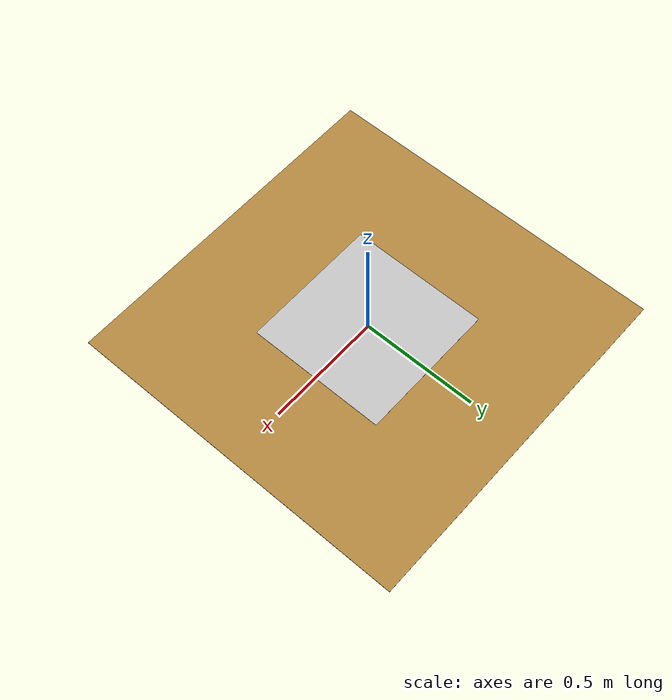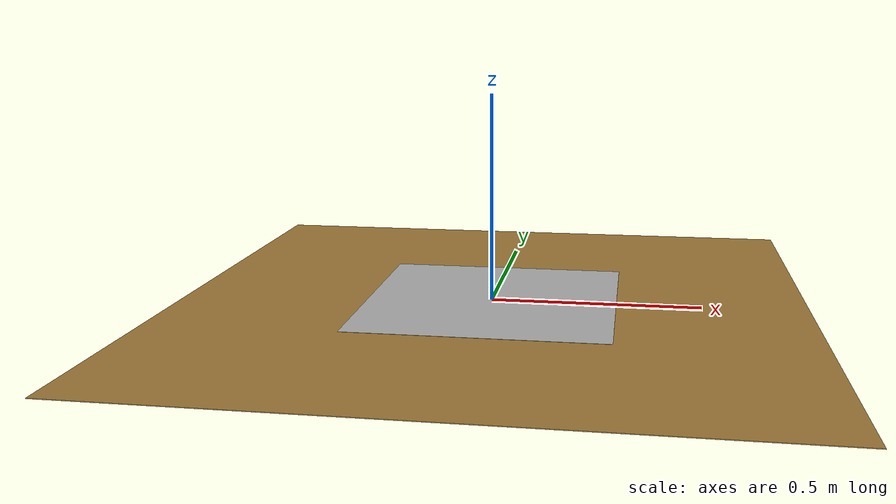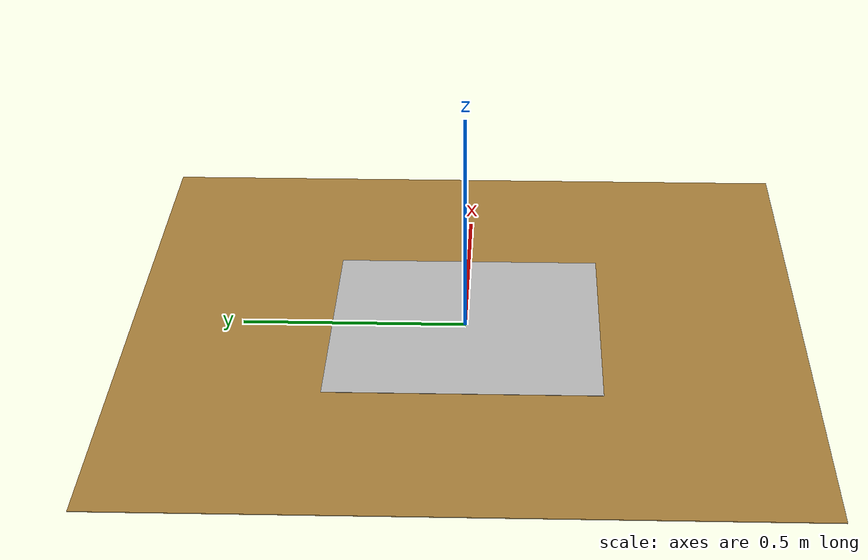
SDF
<?xml version='1.0'?>
<sdf version="1.6">
  <model name="wp_marker_1">
    <static>true</static>
    <link name="link">
      <pose>0 0 0.001 0 0 0</pose>
      <visual name="tarp_orange">
        <geometry><plane><normal>0 0 1</normal><size>1.5 1.5</size></plane></geometry>
        <material>
          <ambient>0.655 0.499 0.226 1</ambient>
          <diffuse>0.655 0.499 0.226 1</diffuse>
        </material>
      </visual>
      <visual name="marker">
        <pose>0 0 0.001 0 0 0</pose>
        <geometry><plane><normal>0 0 1</normal><size>0.6 0.6</size></plane></geometry>
        <material>
          <script>
            <uri>model://wp_marker_1/materials/scripts</uri>
            <uri>model://wp_marker_1/materials/textures</uri>
            <name>WpMarker/wp1</name>
          </script>
        </material>
      </visual>
    </link>
  </model>
</sdf>
